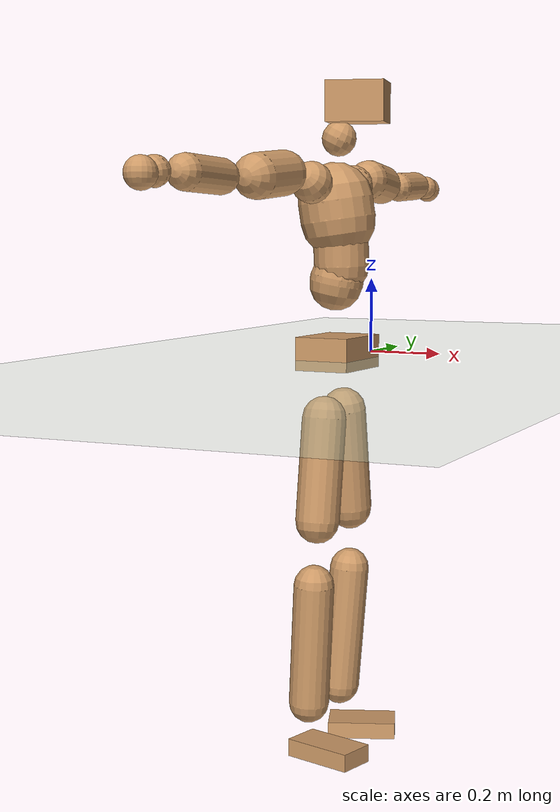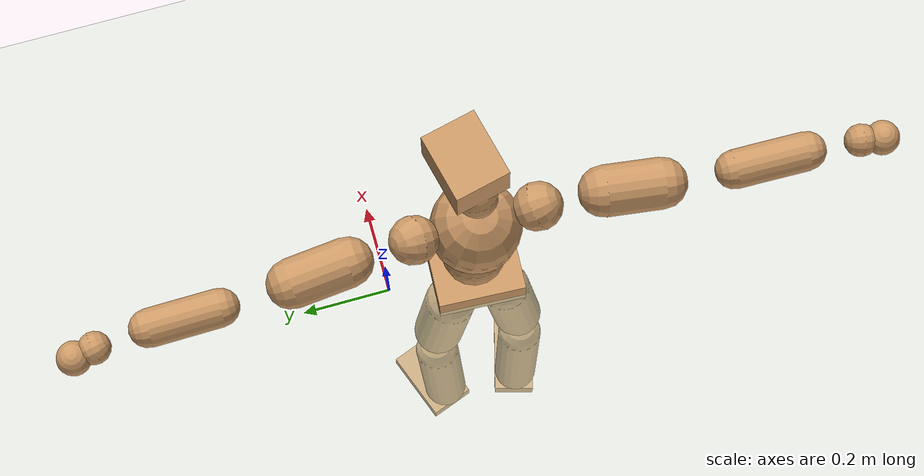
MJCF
<mujoco model="humanoid">
  <compiler coordinate="local" angle="radian"/>
  <default>
    <joint damping="0.0" armature="0.01" stiffness="0.0" limited="true"/>
    <geom conaffinity="1" condim="3" contype="7" margin="0.001" rgba="0.8 0.6 .4 1"/>
  </default>
  <asset>
    <texture type="skybox" builtin="gradient" rgb1=".4 .5 .6" rgb2="0 0 0" width="100" height="100"/>
    <texture builtin="flat" height="1278" mark="cross" markrgb="1 1 1" name="texgeom" random="0.01" rgb1="0.8 0.6 0.4" rgb2="0.8 0.6 0.4" type="cube" width="127"/>
    <texture builtin="checker" height="100" name="texplane" rgb1="0 0 0" rgb2="0.8 0.8 0.8" type="2d" width="100"/>
    <material name="MatPlane" reflectance="0.5" shininess="1" specular="1" texrepeat="60 60" texture="texplane"/>
    <material name="geom" texture="texgeom" texuniform="true"/>
  </asset>
  <worldbody>
    <light cutoff="100" diffuse="1 1 1" dir="-0 0 -1.3" directional="true" exponent="1" pos="0 0 1.3" specular=".1 .1 .1"/>
    <geom conaffinity="1" condim="3" name="floor" pos="0 0 0" rgba="0.8 0.9 0.8 1" size="100 100 .2" type="plane" material="MatPlane"/>
    <body name="Pelvis" pos="-0.0018 -0.2019 0.0227">
      <freejoint name="Pelvis"/>
      <geom type="box" contype="1" conaffinity="1" density="5359.374762" pos="-0.0119 0.0006 -0.0085" size="0.0739 0.0998 0.0435" quat="0.9997 0.0000 0.0000 -0.0233" name="Pelvis"/>
      <body name="L_Hip" pos="-0.0225 0.0538 -0.0801">
        <joint name="L_Hip_x" type="hinge" pos="0 0 0" axis="1 0 0" stiffness="1600" damping="160" armature="0.02" range="-180.0000 180.0000"/>
        <joint name="L_Hip_y" type="hinge" pos="0 0 0" axis="0 1 0" stiffness="1600" damping="160" armature="0.02" range="-180.0000 180.0000"/>
        <joint name="L_Hip_z" type="hinge" pos="0 0 0" axis="0 0 1" stiffness="1600" damping="160" armature="0.02" range="-180.0000 180.0000"/>
        <geom type="capsule" contype="1" conaffinity="1" density="2040.816327" size="0.0589" fromto="0.0015 0.0107 -0.0883 0.0063 0.0440 -0.3616" name="L_Hip"/>
        <body name="L_Knee" pos="0.0078 0.0547 -0.4498">
          <joint name="L_Knee_x" type="hinge" pos="0 0 0" axis="1 0 0" stiffness="1600" damping="160" armature="0.02" range="-180.0000 180.0000"/>
          <joint name="L_Knee_y" type="hinge" pos="0 0 0" axis="0 1 0" stiffness="1600" damping="160" armature="0.02" range="-180.0000 180.0000"/>
          <joint name="L_Knee_z" type="hinge" pos="0 0 0" axis="0 0 1" stiffness="1600" damping="160" armature="0.02" range="-180.0000 180.0000"/>
          <geom type="capsule" contype="1" conaffinity="1" density="1234.567901" size="0.0532" fromto="-0.0059 -0.0024 -0.0829 -0.0299 -0.0121 -0.4173" name="L_Knee"/>
          <body name="L_Ankle" pos="-0.0358 -0.0145 -0.5002">
            <joint name="L_Ankle_x" type="hinge" pos="0 0 0" axis="1 0 0" stiffness="1600" damping="160" armature="0.02" range="-180.0000 180.0000"/>
            <joint name="L_Ankle_y" type="hinge" pos="0 0 0" axis="0 1 0" stiffness="1600" damping="160" armature="0.02" range="-180.0000 180.0000"/>
            <joint name="L_Ankle_z" type="hinge" pos="0 0 0" axis="0 0 1" stiffness="1600" damping="160" armature="0.02" range="-180.0000 180.0000"/>
            <geom type="box" contype="1" conaffinity="1" density="999.99994" pos="0.0647 0.0243 -0.0335" size="0.0918 0.0551 0.022" quat="0.9839 0.0000 0.0000 0.1785" name="L_Ankle"/>
            <body name="L_Toe" pos="0.1293 0.0485 -0.0671">
              <joint name="L_Toe_x" type="hinge" pos="0 0 0" axis="1 0 0" stiffness="1000" damping="100" armature="0.02" range="-180.0000 180.0000"/>
              <joint name="L_Toe_y" type="hinge" pos="0 0 0" axis="0 1 0" stiffness="1000" damping="100" armature="0.02" range="-180.0000 180.0000"/>
              <joint name="L_Toe_z" type="hinge" pos="0 0 0" axis="0 0 1" stiffness="1000" damping="100" armature="0.02" range="-180.0000 180.0000"/>
              <geom type="box" contype="1" conaffinity="1" density="7842421.61685" pos="0.0000 0.0000 0.0345" size="0.0011 0.0026 0.0011" quat="0.9832 0.0000 0.0000 0.1826" name="L_Toe"/>
            </body>
          </body>
        </body>
      </body>
      <body name="R_Hip" pos="-0.0192 -0.0556 -0.089">
        <joint name="R_Hip_x" type="hinge" pos="0 0 0" axis="1 0 0" stiffness="1600" damping="160" armature="0.02" range="-180.0000 180.0000"/>
        <joint name="R_Hip_y" type="hinge" pos="0 0 0" axis="0 1 0" stiffness="1600" damping="160" armature="0.02" range="-180.0000 180.0000"/>
        <joint name="R_Hip_z" type="hinge" pos="0 0 0" axis="0 0 1" stiffness="1600" damping="160" armature="0.02" range="-180.0000 180.0000"/>
        <geom type="capsule" contype="1" conaffinity="1" density="2040.816327" size="0.0579" fromto="-0.0013 -0.0107 -0.0873 -0.0055 -0.0439 -0.3573" name="R_Hip"/>
        <body name="R_Knee" pos="-0.0069 -0.0546 -0.4446">
          <joint name="R_Knee_x" type="hinge" pos="0 0 0" axis="1 0 0" stiffness="1600" damping="160" armature="0.02" range="-180.0000 180.0000"/>
          <joint name="R_Knee_y" type="hinge" pos="0 0 0" axis="0 1 0" stiffness="1600" damping="160" armature="0.02" range="-180.0000 180.0000"/>
          <joint name="R_Knee_z" type="hinge" pos="0 0 0" axis="0 0 1" stiffness="1600" damping="160" armature="0.02" range="-180.0000 180.0000"/>
          <geom type="capsule" contype="1" conaffinity="1" density="1234.567901" size="0.0534" fromto="-0.0054 0.0035 -0.0831 -0.0266 0.0175 -0.4103" name="R_Knee"/>
          <body name="R_Ankle" pos="-0.032 0.0211 -0.4934">
            <joint name="R_Ankle_x" type="hinge" pos="0 0 0" axis="1 0 0" stiffness="1600" damping="160" armature="0.02" range="-180.0000 180.0000"/>
            <joint name="R_Ankle_y" type="hinge" pos="0 0 0" axis="0 1 0" stiffness="1600" damping="160" armature="0.02" range="-180.0000 180.0000"/>
            <joint name="R_Ankle_z" type="hinge" pos="0 0 0" axis="0 0 1" stiffness="1600" damping="160" armature="0.02" range="-180.0000 180.0000"/>
            <geom type="box" contype="1" conaffinity="1" density="1000.000034" pos="0.0689 -0.0184 -0.0361" size="0.0961 0.0507 0.0234" quat="0.9915 0.0000 0.0000 -0.1301" name="R_Ankle"/>
            <body name="R_Toe" pos="0.1379 -0.0368 -0.0723">
              <joint name="R_Toe_x" type="hinge" pos="0 0 0" axis="1 0 0" stiffness="1000" damping="100" armature="0.02" range="-180.0000 180.0000"/>
              <joint name="R_Toe_y" type="hinge" pos="0 0 0" axis="0 1 0" stiffness="1000" damping="100" armature="0.02" range="-180.0000 180.0000"/>
              <joint name="R_Toe_z" type="hinge" pos="0 0 0" axis="0 0 1" stiffness="1000" damping="100" armature="0.02" range="-180.0000 180.0000"/>
              <geom type="box" contype="1" conaffinity="1" density="8861479.443575" pos="0.0000 0.0000 0.0359" size="0.0011 0.0025 0.0012" quat="0.9926 0.0000 0.0000 -0.1216" name="R_Toe"/>
            </body>
          </body>
        </body>
      </body>
      <body name="Torso" pos="-0.0297 0.0052 0.1183">
        <joint name="Torso_x" type="hinge" pos="0 0 0" axis="1 0 0" stiffness="2000" damping="200" armature="0.02" range="-180.0000 180.0000"/>
        <joint name="Torso_y" type="hinge" pos="0 0 0" axis="0 1 0" stiffness="2000" damping="200" armature="0.02" range="-180.0000 180.0000"/>
        <joint name="Torso_z" type="hinge" pos="0 0 0" axis="0 0 1" stiffness="2000" damping="200" armature="0.02" range="-180.0000 180.0000"/>
        <geom type="capsule" contype="1" conaffinity="1" density="2040.816327" size="0.0707" fromto="0.0142 0.0014 0.0693 0.0108 0.0011 0.0528" name="Torso"/>
        <body name="Spine" pos="0.025 0.0025 0.1221">
          <joint name="Spine_x" type="hinge" pos="0 0 0" axis="1 0 0" stiffness="2000" damping="200" armature="0.02" range="-180.0000 180.0000"/>
          <joint name="Spine_y" type="hinge" pos="0 0 0" axis="0 1 0" stiffness="2000" damping="200" armature="0.02" range="-180.0000 180.0000"/>
          <joint name="Spine_z" type="hinge" pos="0 0 0" axis="0 0 1" stiffness="2000" damping="200" armature="0.02" range="-180.0000 180.0000"/>
          <geom type="capsule" contype="1" conaffinity="1" density="2040.816327" size="0.0723" fromto="-0.0010 -0.0037 0.0722 0.0003 0.0012 -0.0230" name="Spine"/>
          <body name="Chest" pos="-0.0007 -0.0025 0.0492">
            <joint name="Chest_x" type="hinge" pos="0 0 0" axis="1 0 0" stiffness="2000" damping="200" armature="0.02" range="-180.0000 180.0000"/>
            <joint name="Chest_y" type="hinge" pos="0 0 0" axis="0 1 0" stiffness="2000" damping="200" armature="0.02" range="-180.0000 180.0000"/>
            <joint name="Chest_z" type="hinge" pos="0 0 0" axis="0 0 1" stiffness="2000" damping="200" armature="0.02" range="-180.0000 180.0000"/>
            <geom type="capsule" contype="1" conaffinity="1" density="2040.816327" size="0.0987" fromto="-0.0128 -0.0058 0.0977 -0.0063 -0.0028 0.0480" name="Chest"/>
            <body name="Neck" pos="-0.0238 -0.0156 0.2093">
              <joint name="Neck_x" type="hinge" pos="0 0 0" axis="1 0 0" stiffness="1000" damping="100" armature="0.02" range="-180.0000 180.0000"/>
              <joint name="Neck_y" type="hinge" pos="0 0 0" axis="0 1 0" stiffness="1000" damping="100" armature="0.02" range="-180.0000 180.0000"/>
              <joint name="Neck_z" type="hinge" pos="0 0 0" axis="0 0 1" stiffness="1000" damping="100" armature="0.02" range="-180.0000 180.0000"/>
              <geom type="capsule" contype="1" conaffinity="1" density="1000" size="0.0444" fromto="0.0229 0.0047 0.0444 0.0238 0.0049 0.0462" name="Neck"/>
              <body name="Head" pos="0.0468 0.0096 0.0905">
                <joint name="Head_x" type="hinge" pos="0 0 0" axis="1 0 0" stiffness="1000" damping="100" armature="0.02" range="-180.0000 180.0000"/>
                <joint name="Head_y" type="hinge" pos="0 0 0" axis="0 1 0" stiffness="1000" damping="100" armature="0.02" range="-180.0000 180.0000"/>
                <joint name="Head_z" type="hinge" pos="0 0 0" axis="0 0 1" stiffness="1000" damping="100" armature="0.02" range="-180.0000 180.0000"/>
                <geom type="box" contype="1" conaffinity="1" density="2250.00004" pos="0.0244 0.0058 0.0463" size="0.0754 0.0608 0.0519" quat="0.9932 0.0000 0.0000 0.1162" name="Head"/>
              </body>
            </body>
            <body name="L_Thorax" pos="-0.0148 0.0723 0.1143">
              <joint name="L_Thorax_x" type="hinge" pos="0 0 0" axis="1 0 0" stiffness="1000" damping="100" armature="0.02" range="-180.0000 180.0000"/>
              <joint name="L_Thorax_y" type="hinge" pos="0 0 0" axis="0 1 0" stiffness="1000" damping="100" armature="0.02" range="-180.0000 180.0000"/>
              <joint name="L_Thorax_z" type="hinge" pos="0 0 0" axis="0 0 1" stiffness="1000" damping="100" armature="0.02" range="-180.0000 180.0000"/>
              <geom type="capsule" contype="1" conaffinity="1" density="1000" size="0.053" fromto="-0.0073 0.0597 0.0247 -0.0076 0.0615 0.0255" name="L_Thorax"/>
              <body name="L_Shoulder" pos="-0.0149 0.1213 0.0502">
                <joint name="L_Shoulder_x" type="hinge" pos="0 0 0" axis="1 0 0" stiffness="1000" damping="100" armature="0.02" range="-720.0000 720.0000"/>
                <joint name="L_Shoulder_y" type="hinge" pos="0 0 0" axis="0 1 0" stiffness="1000" damping="100" armature="0.02" range="-720.0000 720.0000"/>
                <joint name="L_Shoulder_z" type="hinge" pos="0 0 0" axis="0 0 1" stiffness="1000" damping="100" armature="0.02" range="-720.0000 720.0000"/>
                <geom type="capsule" contype="1" conaffinity="1" density="1000" size="0.0544" fromto="-0.0070 0.0838 -0.0067 -0.0173 0.2084 -0.0167" name="L_Shoulder"/>
                <body name="L_Elbow" pos="-0.0243 0.2923 -0.0235">
                  <joint name="L_Elbow_x" type="hinge" pos="0 0 0" axis="1 0 0" stiffness="1000" damping="100" armature="0.02" range="-720.0000 720.0000"/>
                  <joint name="L_Elbow_y" type="hinge" pos="0 0 0" axis="0 1 0" stiffness="1000" damping="100" armature="0.02" range="-720.0000 720.0000"/>
                  <joint name="L_Elbow_z" type="hinge" pos="0 0 0" axis="0 0 1" stiffness="1000" damping="100" armature="0.02" range="-720.0000 720.0000"/>
                  <geom type="capsule" contype="1" conaffinity="1" density="1000" size="0.0415" fromto="-0.0021 0.0714 0.0032 -0.0067 0.2251 0.0102" name="L_Elbow"/>
                  <body name="L_Wrist" pos="-0.0088 0.2965 0.0134">
                    <joint name="L_Wrist_x" type="hinge" pos="0 0 0" axis="1 0 0" stiffness="600" damping="60" armature="0.02" range="-180.0000 180.0000"/>
                    <joint name="L_Wrist_y" type="hinge" pos="0 0 0" axis="0 1 0" stiffness="600" damping="60" armature="0.02" range="-180.0000 180.0000"/>
                    <joint name="L_Wrist_z" type="hinge" pos="0 0 0" axis="0 0 1" stiffness="600" damping="60" armature="0.02" range="-180.0000 180.0000"/>
                    <geom type="capsule" contype="1" conaffinity="1" density="1000" size="0.035" fromto="-0.0083 0.0448 -0.0053 -0.0087 0.0467 -0.0055" name="L_Wrist"/>
                    <body name="L_Hand" pos="-0.017 0.0915 -0.0108">
                      <joint name="L_Hand_x" type="hinge" pos="0 0 0" axis="1 0 0" stiffness="600" damping="60" armature="0.02" range="-180.0000 180.0000"/>
                      <joint name="L_Hand_y" type="hinge" pos="0 0 0" axis="0 1 0" stiffness="600" damping="60" armature="0.02" range="-180.0000 180.0000"/>
                      <joint name="L_Hand_z" type="hinge" pos="0 0 0" axis="0 0 1" stiffness="600" damping="60" armature="0.02" range="-180.0000 180.0000"/>
                      <geom type="sphere" contype="1" conaffinity="1" density="1000" size="0.0372" pos="0.0000 0.0000 0.0000" name="L_Hand"/>
                    </body>
                  </body>
                </body>
              </body>
            </body>
            <body name="R_Thorax" pos="-0.0185 -0.0824 0.1136">
              <joint name="R_Thorax_x" type="hinge" pos="0 0 0" axis="1 0 0" stiffness="1000" damping="100" armature="0.02" range="-180.0000 180.0000"/>
              <joint name="R_Thorax_y" type="hinge" pos="0 0 0" axis="0 1 0" stiffness="1000" damping="100" armature="0.02" range="-180.0000 180.0000"/>
              <joint name="R_Thorax_z" type="hinge" pos="0 0 0" axis="0 0 1" stiffness="1000" damping="100" armature="0.02" range="-180.0000 180.0000"/>
              <geom type="capsule" contype="1" conaffinity="1" density="1000" size="0.0532" fromto="-0.0022 -0.0543 0.0264 -0.0022 -0.0561 0.0272" name="R_Thorax"/>
              <body name="R_Shoulder" pos="-0.0044 -0.1104 0.0536">
                <joint name="R_Shoulder_x" type="hinge" pos="0 0 0" axis="1 0 0" stiffness="1000" damping="100" armature="0.02" range="-720.0000 720.0000"/>
                <joint name="R_Shoulder_y" type="hinge" pos="0 0 0" axis="0 1 0" stiffness="1000" damping="100" armature="0.02" range="-720.0000 720.0000"/>
                <joint name="R_Shoulder_z" type="hinge" pos="0 0 0" axis="0 0 1" stiffness="1000" damping="100" armature="0.02" range="-720.0000 720.0000"/>
                <geom type="capsule" contype="1" conaffinity="1" density="1000" size="0.0558" fromto="-0.0087 -0.0850 -0.0075 -0.0212 -0.2079 -0.0185" name="R_Shoulder"/>
                <body name="R_Elbow" pos="-0.0299 -0.2929 -0.026">
                  <joint name="R_Elbow_x" type="hinge" pos="0 0 0" axis="1 0 0" stiffness="1000" damping="100" armature="0.02" range="-720.0000 720.0000"/>
                  <joint name="R_Elbow_y" type="hinge" pos="0 0 0" axis="0 1 0" stiffness="1000" damping="100" armature="0.02" range="-720.0000 720.0000"/>
                  <joint name="R_Elbow_z" type="hinge" pos="0 0 0" axis="0 0 1" stiffness="1000" damping="100" armature="0.02" range="-720.0000 720.0000"/>
                  <geom type="capsule" contype="1" conaffinity="1" density="1000" size="0.0423" fromto="-0.0018 -0.0723 0.0024 -0.0057 -0.2296 0.0076" name="R_Elbow"/>
                  <body name="R_Wrist" pos="-0.0075 -0.3019 0.01">
                    <joint name="R_Wrist_x" type="hinge" pos="0 0 0" axis="1 0 0" stiffness="600" damping="60" armature="0.02" range="-180.0000 180.0000"/>
                    <joint name="R_Wrist_y" type="hinge" pos="0 0 0" axis="0 1 0" stiffness="600" damping="60" armature="0.02" range="-180.0000 180.0000"/>
                    <joint name="R_Wrist_z" type="hinge" pos="0 0 0" axis="0 0 1" stiffness="600" damping="60" armature="0.02" range="-180.0000 180.0000"/>
                    <geom type="capsule" contype="1" conaffinity="1" density="1000" size="0.0353" fromto="-0.0054 -0.0451 -0.0043 -0.0056 -0.0471 -0.0045" name="R_Wrist"/>
                    <body name="R_Hand" pos="-0.011 -0.0923 -0.0088">
                      <joint name="R_Hand_x" type="hinge" pos="0 0 0" axis="1 0 0" stiffness="600" damping="60" armature="0.02" range="-180.0000 180.0000"/>
                      <joint name="R_Hand_y" type="hinge" pos="0 0 0" axis="0 1 0" stiffness="600" damping="60" armature="0.02" range="-180.0000 180.0000"/>
                      <joint name="R_Hand_z" type="hinge" pos="0 0 0" axis="0 0 1" stiffness="600" damping="60" armature="0.02" range="-180.0000 180.0000"/>
                      <geom type="sphere" contype="1" conaffinity="1" density="1000" size="0.0373" pos="0.0000 0.0000 0.0000" name="R_Hand"/>
                    </body>
                  </body>
                </body>
              </body>
            </body>
          </body>
        </body>
      </body>
    </body>
  </worldbody>
  <actuator>
    <motor name="L_Hip_x" joint="L_Hip_x" gear="500"/>
    <motor name="L_Hip_y" joint="L_Hip_y" gear="500"/>
    <motor name="L_Hip_z" joint="L_Hip_z" gear="500"/>
    <motor name="L_Knee_x" joint="L_Knee_x" gear="500"/>
    <motor name="L_Knee_y" joint="L_Knee_y" gear="500"/>
    <motor name="L_Knee_z" joint="L_Knee_z" gear="500"/>
    <motor name="L_Ankle_x" joint="L_Ankle_x" gear="500"/>
    <motor name="L_Ankle_y" joint="L_Ankle_y" gear="500"/>
    <motor name="L_Ankle_z" joint="L_Ankle_z" gear="500"/>
    <motor name="L_Toe_x" joint="L_Toe_x" gear="500"/>
    <motor name="L_Toe_y" joint="L_Toe_y" gear="500"/>
    <motor name="L_Toe_z" joint="L_Toe_z" gear="500"/>
    <motor name="R_Hip_x" joint="R_Hip_x" gear="500"/>
    <motor name="R_Hip_y" joint="R_Hip_y" gear="500"/>
    <motor name="R_Hip_z" joint="R_Hip_z" gear="500"/>
    <motor name="R_Knee_x" joint="R_Knee_x" gear="500"/>
    <motor name="R_Knee_y" joint="R_Knee_y" gear="500"/>
    <motor name="R_Knee_z" joint="R_Knee_z" gear="500"/>
    <motor name="R_Ankle_x" joint="R_Ankle_x" gear="500"/>
    <motor name="R_Ankle_y" joint="R_Ankle_y" gear="500"/>
    <motor name="R_Ankle_z" joint="R_Ankle_z" gear="500"/>
    <motor name="R_Toe_x" joint="R_Toe_x" gear="500"/>
    <motor name="R_Toe_y" joint="R_Toe_y" gear="500"/>
    <motor name="R_Toe_z" joint="R_Toe_z" gear="500"/>
    <motor name="Torso_x" joint="Torso_x" gear="500"/>
    <motor name="Torso_y" joint="Torso_y" gear="500"/>
    <motor name="Torso_z" joint="Torso_z" gear="500"/>
    <motor name="Spine_x" joint="Spine_x" gear="500"/>
    <motor name="Spine_y" joint="Spine_y" gear="500"/>
    <motor name="Spine_z" joint="Spine_z" gear="500"/>
    <motor name="Chest_x" joint="Chest_x" gear="500"/>
    <motor name="Chest_y" joint="Chest_y" gear="500"/>
    <motor name="Chest_z" joint="Chest_z" gear="500"/>
    <motor name="Neck_x" joint="Neck_x" gear="500"/>
    <motor name="Neck_y" joint="Neck_y" gear="500"/>
    <motor name="Neck_z" joint="Neck_z" gear="500"/>
    <motor name="Head_x" joint="Head_x" gear="500"/>
    <motor name="Head_y" joint="Head_y" gear="500"/>
    <motor name="Head_z" joint="Head_z" gear="500"/>
    <motor name="L_Thorax_x" joint="L_Thorax_x" gear="500"/>
    <motor name="L_Thorax_y" joint="L_Thorax_y" gear="500"/>
    <motor name="L_Thorax_z" joint="L_Thorax_z" gear="500"/>
    <motor name="L_Shoulder_x" joint="L_Shoulder_x" gear="500"/>
    <motor name="L_Shoulder_y" joint="L_Shoulder_y" gear="500"/>
    <motor name="L_Shoulder_z" joint="L_Shoulder_z" gear="500"/>
    <motor name="L_Elbow_x" joint="L_Elbow_x" gear="500"/>
    <motor name="L_Elbow_y" joint="L_Elbow_y" gear="500"/>
    <motor name="L_Elbow_z" joint="L_Elbow_z" gear="500"/>
    <motor name="L_Wrist_x" joint="L_Wrist_x" gear="500"/>
    <motor name="L_Wrist_y" joint="L_Wrist_y" gear="500"/>
    <motor name="L_Wrist_z" joint="L_Wrist_z" gear="500"/>
    <motor name="L_Hand_x" joint="L_Hand_x" gear="500"/>
    <motor name="L_Hand_y" joint="L_Hand_y" gear="500"/>
    <motor name="L_Hand_z" joint="L_Hand_z" gear="500"/>
    <motor name="R_Thorax_x" joint="R_Thorax_x" gear="500"/>
    <motor name="R_Thorax_y" joint="R_Thorax_y" gear="500"/>
    <motor name="R_Thorax_z" joint="R_Thorax_z" gear="500"/>
    <motor name="R_Shoulder_x" joint="R_Shoulder_x" gear="500"/>
    <motor name="R_Shoulder_y" joint="R_Shoulder_y" gear="500"/>
    <motor name="R_Shoulder_z" joint="R_Shoulder_z" gear="500"/>
    <motor name="R_Elbow_x" joint="R_Elbow_x" gear="500"/>
    <motor name="R_Elbow_y" joint="R_Elbow_y" gear="500"/>
    <motor name="R_Elbow_z" joint="R_Elbow_z" gear="500"/>
    <motor name="R_Wrist_x" joint="R_Wrist_x" gear="500"/>
    <motor name="R_Wrist_y" joint="R_Wrist_y" gear="500"/>
    <motor name="R_Wrist_z" joint="R_Wrist_z" gear="500"/>
    <motor name="R_Hand_x" joint="R_Hand_x" gear="500"/>
    <motor name="R_Hand_y" joint="R_Hand_y" gear="500"/>
    <motor name="R_Hand_z" joint="R_Hand_z" gear="500"/>
  </actuator>
  <contact>
    <exclude body1="Torso" body2="Chest"/>
    <exclude body1="Head" body2="Chest"/>
    <exclude body1="R_Knee" body2="R_Toe"/>
    <exclude body1="R_Knee" body2="L_Ankle"/>
    <exclude body1="R_Knee" body2="L_Toe"/>
    <exclude body1="L_Knee" body2="L_Toe"/>
    <exclude body1="L_Knee" body2="R_Ankle"/>
    <exclude body1="L_Knee" body2="R_Toe"/>
    <exclude body1="L_Shoulder" body2="Chest"/>
    <exclude body1="R_Shoulder" body2="Chest"/>
  </contact>
  <sensor/>
  <size njmax="700" nconmax="700"/>
</mujoco>
